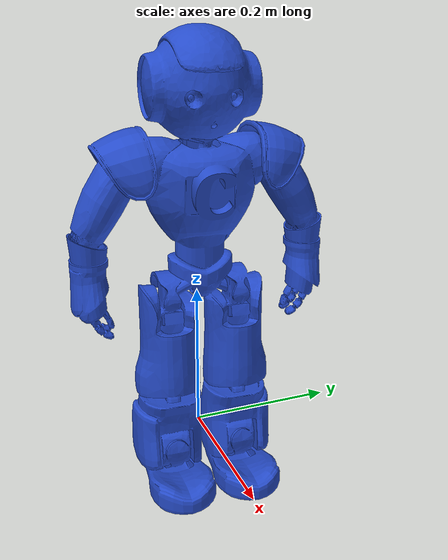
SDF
<?xml version='1.0'?>
<sdf version='1.6'>
  <model name='nao_body'>
    <model name='nao_body'>
      <link name='link_0'>
        <inertial>
          <mass>15</mass>
          <inertia>
            <ixx>0</ixx>
            <ixy>0</ixy>
            <ixz>0</ixz>
            <iyy>0</iyy>
            <iyz>0</iyz>
            <izz>0</izz>
          </inertia>
        </inertial>
        <pose frame=''>0 -0 0 0 -0 0</pose>
        <visual name='visual'>
          <pose frame=''>0 0 0 0 -0 0</pose>
          <geometry>

            <mesh>
              <uri>/usr/share/nao_body_mesh/nao_robot.stl</uri>
              <scale>0.0037 0.0037 0.0037</scale>
            </mesh>
          </geometry>
          <material>
            <lighting>1</lighting>
            <script>
              <uri>file://media/materials/scripts/gazebo.material</uri>
              <name>Gazebo/Blue</name>
            </script>
          </material>
          <transparency>0</transparency>
          <cast_shadows>1</cast_shadows>
        </visual>
        <collision name='collision'>
          <laser_retro>0</laser_retro>
          <max_contacts>10</max_contacts>
          <pose frame=''>-0.025 -0.1 0.28 0 -0 0</pose>
          <geometry>
		<box>
		<size>0.35 0.22 0.57</size>
		</box>
          </geometry>
          <surface>
            <friction>
              <ode>
                <mu>2</mu>
                <mu2>2</mu2>
                <fdir1>0 0 0</fdir1>
                <slip1>0</slip1>
                <slip2>0</slip2>
              </ode>
              <torsional>
                <coefficient>1</coefficient>
                <patch_radius>0</patch_radius>
                <surface_radius>0</surface_radius>
                <use_patch_radius>1</use_patch_radius>
                <ode>
                  <slip>0</slip>
                </ode>
              </torsional>
            </friction>
            <bounce>
              <restitution_coefficient>0</restitution_coefficient>
              <threshold>1e+06</threshold>
            </bounce>
            <contact>
              <ode>
                <soft_cfm>0</soft_cfm>
                <soft_erp>0.2</soft_erp>
                <kp>1e+13</kp>
                <kd>1</kd>
                <max_vel>0.01</max_vel>
                <min_depth>0</min_depth>
              </ode>
              <bullet>
                <split_impulse>1</split_impulse>
                <split_impulse_penetration_threshold>-0.01</split_impulse_penetration_threshold>
                <soft_cfm>0</soft_cfm>
                <soft_erp>0.2</soft_erp>
                <kp>1e+13</kp>
                <kd>1</kd>
              </bullet>
            </contact>
          </surface>
        </collision>
      </link>
      <static>0</static>
      <allow_auto_disable>1</allow_auto_disable>
      <pose frame=''>-0 -1e-06 0 0 -0 1.52144</pose>
    </model>
    <static>0</static>
    <allow_auto_disable>1</allow_auto_disable>
  </model>

</sdf>
